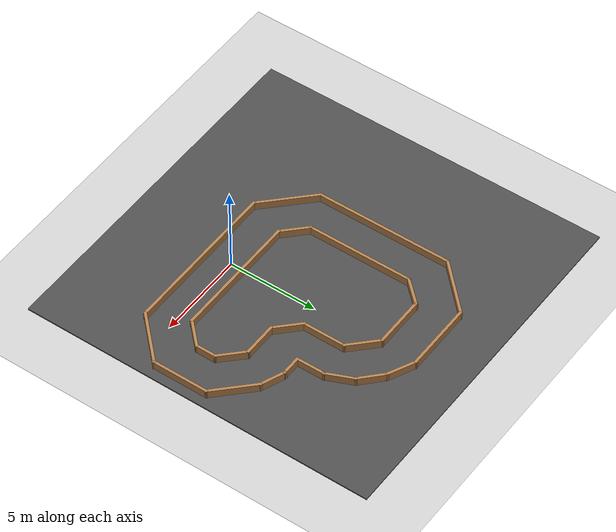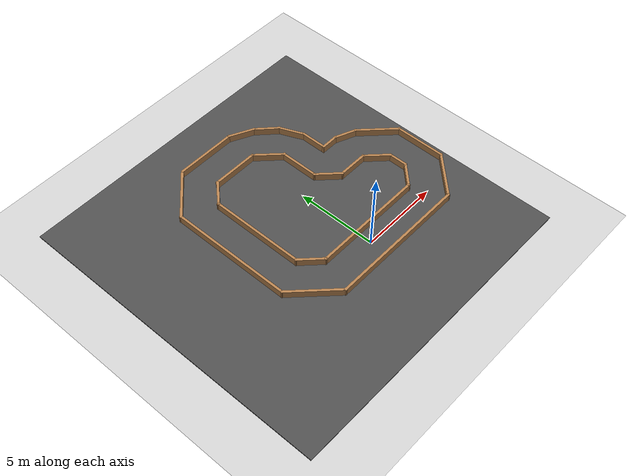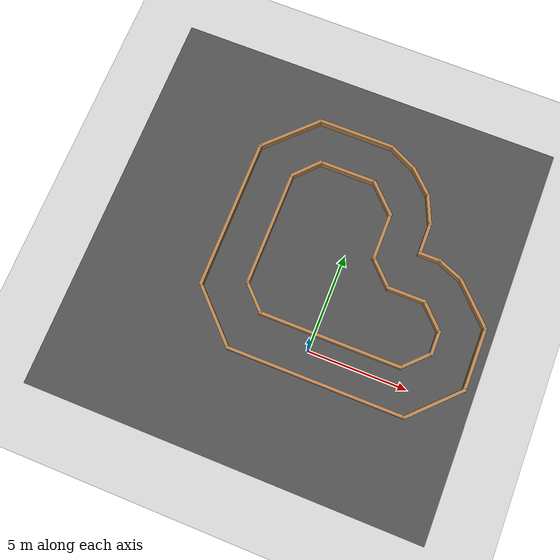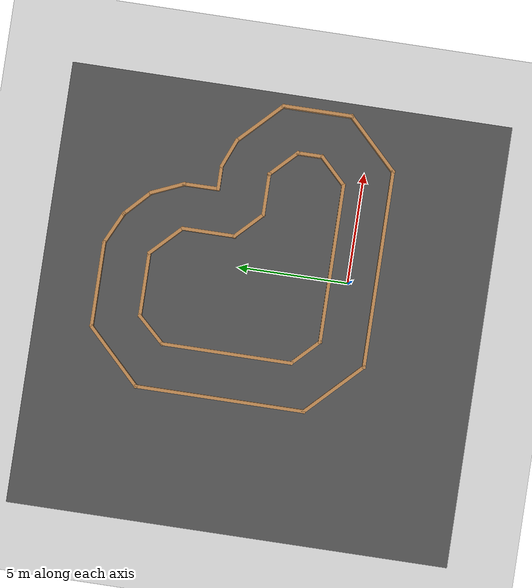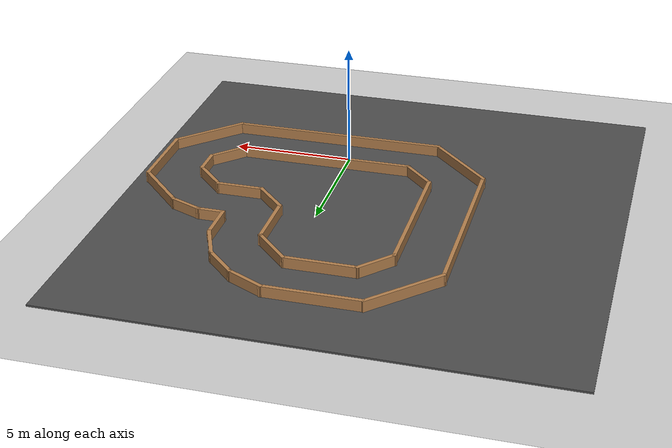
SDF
<sdf version="1.6">
 <world name="default">
  <light name="sun" type="directional">
   <pose>0 0 10 0 -0 0</pose>
   <diffuse>0.8 0.8 0.8 1</diffuse>
   <specular>0.1 0.1 0.1 1</specular>
   <attenuation>
    <range>1000</range>
    <constant>0.9</constant>
    <linear>0.01</linear>
    <quadratic>0.001</quadratic>
   </attenuation>
   <direction>-0.5 0.5 -1</direction>
  </light>
  <model name="ground_plane">
   <static>1</static>
   <link name="link">
    <collision name="collision">
     <geometry><plane><normal>0 0 1</normal><size>100 100</size></plane></geometry>
     <surface><friction><ode><mu>100</mu><mu2>50</mu2></ode></friction></surface>
    </collision>
    <visual name="visual">
     <cast_shadows>0</cast_shadows>
     <geometry><plane><normal>0 0 1</normal><size>100 100</size></plane></geometry>
     <material>
      <script><uri>file://media/materials/scripts/gazebo.material</uri><name>Gazebo/Grey</name></script>
     </material>
    </visual>
   </link>
  </model>
  <gravity>0 0 -9.8</gravity>
  <magnetic_field>6e-06 2.3e-05 -4.2e-05</magnetic_field>
  <atmosphere type="adiabatic"/>
  <physics name="default_physics" default="0" type="ode">
   <max_step_size>0.001</max_step_size>
   <real_time_factor>1</real_time_factor>
   <real_time_update_rate>1000</real_time_update_rate>
  </physics>
  <scene><ambient>0.4 0.4 0.4 1</ambient><background>0.7 0.7 0.7 1</background><shadows>1</shadows></scene>
  <spherical_coordinates>
   <surface_model>EARTH_WGS84</surface_model>
   <latitude_deg>0</latitude_deg>
   <longitude_deg>0</longitude_deg>
   <elevation>0</elevation>
   <heading_deg>0</heading_deg>
  </spherical_coordinates>
  <model name="asphalt_plane">
   <static>1</static>
   <link name="link">
    <collision name="collision"><geometry><box><size>20 20 0.1</size></box></geometry></collision>
    <visual name="visual">
     <cast_shadows>0</cast_shadows>
     <geometry><box><size>20 20 0.1</size></box></geometry>
     <material>
      <script>
       <uri>model://asphalt_plane/materials/scripts</uri>
       <uri>model://asphalt_plane/materials/textures</uri>
       <name>vrc/asphalt</name>
      </script>
     </material>
    </visual>
   </link>
   <pose>-1.94804 3.72296 0 0 -0 0</pose>
  </model>
  <model name="test-3">
   <pose>0.74969 4.92186 0 0 -0 0</pose>
   <link name="Wall_0">
    <collision name="Wall_0_Collision">
     <geometry><box><size>6 0.15 0.5</size></box></geometry>
     <pose>0 0 0.25 0 -0 0</pose>
    </collision>
    <visual name="Wall_0_Visual">
     <pose>0 0 0.25 0 -0 0</pose>
     <geometry><box><size>6 0.15 0.5</size></box></geometry>
     <material>
      <script><uri>file://media/materials/scripts/gazebo.material</uri><name>Gazebo/Wood</name></script>
      <ambient>1 1 1 1</ambient>
     </material>
    </visual>
    <pose>-4.64742 -0.004423 0 0 0 -1.5708</pose>
   </link>
   <link name="Wall_1">
    <collision name="Wall_1_Collision">
     <geometry><box><size>1.75 0.15 0.5</size></box></geometry>
     <pose>0 0 0.25 0 -0 0</pose>
    </collision>
    <visual name="Wall_1_Visual">
     <pose>0 0 0.25 0 -0 0</pose>
     <geometry><box><size>1.75 0.15 0.5</size></box></geometry>
     <material>
      <script><uri>file://media/materials/scripts/gazebo.material</uri><name>Gazebo/Wood</name></script>
      <ambient>1 1 1 1</ambient>
     </material>
    </visual>
    <pose>-4.08142 -3.49542 0 0 0 -0.785398</pose>
   </link>
   <link name="Wall_10">
    <collision name="Wall_10_Collision">
     <geometry><box><size>3 0.15 0.5</size></box></geometry>
     <pose>0 0 0.25 0 -0 0</pose>
    </collision>
    <visual name="Wall_10_Visual">
     <pose>0 0 0.25 0 -0 0</pose>
     <geometry><box><size>3 0.15 0.5</size></box></geometry>
     <material>
      <script><uri>file://media/materials/scripts/gazebo.material</uri><name>Gazebo/Wood</name></script>
      <ambient>1 1 1 1</ambient>
     </material>
    </visual>
    <pose>-2.13042 4.09158 0 0 -0 3.14159</pose>
   </link>
   <link name="Wall_11">
    <collision name="Wall_11_Collision">
     <geometry><box><size>1.75098 0.15 0.5</size></box></geometry>
     <pose>0 0 0.25 0 -0 0</pose>
    </collision>
    <visual name="Wall_11_Visual">
     <pose>0 0 0.25 0 -0 0</pose>
     <geometry><box><size>1.75098 0.15 0.5</size></box></geometry>
     <material>
      <script><uri>file://media/materials/scripts/gazebo.material</uri><name>Gazebo/Wood</name></script>
      <ambient>1 1 1 1</ambient>
     </material>
    </visual>
    <pose>-4.10142 3.50608 0 0 0 -2.3213</pose>
   </link>
   <link name="Wall_13">
    <collision name="Wall_13_Collision">
     <geometry><box><size>3.49886 0.15 0.5</size></box></geometry>
     <pose>0 0 0.25 0 -0 0</pose>
    </collision>
    <visual name="Wall_13_Visual">
     <pose>0 0 0.25 0 -0 0</pose>
     <geometry><box><size>3.49886 0.15 0.5</size></box></geometry>
     <material>
      <script><uri>file://media/materials/scripts/gazebo.material</uri><name>Gazebo/Wood</name></script>
      <ambient>1 1 1 1</ambient>
     </material>
    </visual>
    <pose>-5.52142 4.98458 0 0 0 -2.35619</pose>
   </link>
   <link name="Wall_14">
    <collision name="Wall_14_Collision">
     <geometry><box><size>7.75 0.15 0.5</size></box></geometry>
     <pose>0 0 0.25 0 -0 0</pose>
    </collision>
    <visual name="Wall_14_Visual">
     <pose>0 0 0.25 0 -0 0</pose>
     <geometry><box><size>7.75 0.15 0.5</size></box></geometry>
     <material>
      <script><uri>file://media/materials/scripts/gazebo.material</uri><name>Gazebo/Wood</name></script>
      <ambient>1 1 1 1</ambient>
     </material>
    </visual>
    <pose>-6.70542 0.000577 0 0 0 -1.5708</pose>
   </link>
   <link name="Wall_15">
    <collision name="Wall_15_Collision">
     <geometry><box><size>3.5 0.15 0.5</size></box></geometry>
     <pose>0 0 0.25 0 -0 0</pose>
    </collision>
    <visual name="Wall_15_Visual">
     <pose>0 0 0.25 0 -0 0</pose>
     <geometry><box><size>3.5 0.15 0.5</size></box></geometry>
     <material>
      <script><uri>file://media/materials/scripts/gazebo.material</uri><name>Gazebo/Wood</name></script>
      <ambient>1 1 1 1</ambient>
     </material>
    </visual>
    <pose>-5.52142 -4.98392 0 0 0 -0.785609</pose>
   </link>
   <link name="Wall_16">
    <collision name="Wall_16_Collision">
     <geometry><box><size>9 0.15 0.5</size></box></geometry>
     <pose>0 0 0.25 0 -0 0</pose>
    </collision>
    <visual name="Wall_16_Visual">
     <pose>0 0 0.25 0 -0 0</pose>
     <geometry><box><size>9 0.15 0.5</size></box></geometry>
     <material>
      <script><uri>file://media/materials/scripts/gazebo.material</uri><name>Gazebo/Wood</name></script>
      <ambient>1 1 1 1</ambient>
     </material>
    </visual>
    <pose>0.087583 -6.16842 0 0 -0 0</pose>
   </link>
   <link name="Wall_17">
    <collision name="Wall_17_Collision">
     <geometry><box><size>3.25 0.15 0.5</size></box></geometry>
     <pose>0 0 0.25 0 -0 0</pose>
    </collision>
    <visual name="Wall_17_Visual">
     <pose>0 0 0.25 0 -0 0</pose>
     <geometry><box><size>3.25 0.15 0.5</size></box></geometry>
     <material>
      <script><uri>file://media/materials/scripts/gazebo.material</uri><name>Gazebo/Wood</name></script>
      <ambient>1 1 1 1</ambient>
     </material>
    </visual>
    <pose>5.60908 -5.07242 0 0 -0 0.78517</pose>
   </link>
   <link name="Wall_18">
    <collision name="Wall_18_Collision">
     <geometry><box><size>3.25 0.15 0.5</size></box></geometry>
     <pose>0 0 0.25 0 -0 0</pose>
    </collision>
    <visual name="Wall_18_Visual">
     <pose>0 0 0.25 0 -0 0</pose>
     <geometry><box><size>3.25 0.15 0.5</size></box></geometry>
     <material>
      <script><uri>file://media/materials/scripts/gazebo.material</uri><name>Gazebo/Wood</name></script>
      <ambient>1 1 1 1</ambient>
     </material>
    </visual>
    <pose>6.70558 -2.42642 0 0 -0 1.5708</pose>
   </link>
   <link name="Wall_19">
    <collision name="Wall_19_Collision">
     <geometry><box><size>2.75 0.15 0.5</size></box></geometry>
     <pose>0 0 0.25 0 -0 0</pose>
    </collision>
    <visual name="Wall_19_Visual">
     <pose>0 0 0.25 0 -0 0</pose>
     <geometry><box><size>2.75 0.15 0.5</size></box></geometry>
     <material>
      <script><uri>file://media/materials/scripts/gazebo.material</uri><name>Gazebo/Wood</name></script>
      <ambient>1 1 1 1</ambient>
     </material>
    </visual>
    <pose>5.78608 0.042577 0 0 -0 2.35647</pose>
   </link>
   <link name="Wall_2">
    <collision name="Wall_2_Collision">
     <geometry><box><size>7.25 0.15 0.5</size></box></geometry>
     <pose>0 0 0.25 0 -0 0</pose>
    </collision>
    <visual name="Wall_2_Visual">
     <pose>0 0 0.25 0 -0 0</pose>
     <geometry><box><size>7.25 0.15 0.5</size></box></geometry>
     <material>
      <script><uri>file://media/materials/scripts/gazebo.material</uri><name>Gazebo/Wood</name></script>
      <ambient>1 1 1 1</ambient>
     </material>
    </visual>
    <pose>0.034583 -4.06142 0 0 -0 0</pose>
   </link>
   <link name="Wall_20">
    <collision name="Wall_20_Collision">
     <geometry><box><size>1.49228 0.15 0.5</size></box></geometry>
     <pose>0 0 0.25 0 -0 0</pose>
    </collision>
    <visual name="Wall_20_Visual">
     <pose>0 0 0.25 0 -0 0</pose>
     <geometry><box><size>1.49228 0.15 0.5</size></box></geometry>
     <material>
      <script><uri>file://media/materials/scripts/gazebo.material</uri><name>Gazebo/Wood</name></script>
      <ambient>1 1 1 1</ambient>
     </material>
    </visual>
    <pose>4.24508 1.21508 0 0 -0 2.75431</pose>
   </link>
   <link name="Wall_21">
    <collision name="Wall_21_Collision">
     <geometry><box><size>1.18189 0.15 0.5</size></box></geometry>
     <pose>0 0 0.25 0 -0 0</pose>
    </collision>
    <visual name="Wall_21_Visual">
     <pose>0 0 0.25 0 -0 0</pose>
     <geometry><box><size>1.18189 0.15 0.5</size></box></geometry>
     <material>
      <script><uri>file://media/materials/scripts/gazebo.material</uri><name>Gazebo/Wood</name></script>
      <ambient>1 1 1 1</ambient>
     </material>
    </visual>
    <pose>3.10808 1.46858 0 0 -0 3.14159</pose>
   </link>
   <link name="Wall_22">
    <collision name="Wall_22_Collision">
     <geometry><box><size>1.69243 0.15 0.5</size></box></geometry>
     <pose>0 0 0.25 0 -0 0</pose>
    </collision>
    <visual name="Wall_22_Visual">
     <pose>0 0 0.25 0 -0 0</pose>
     <geometry><box><size>1.69243 0.15 0.5</size></box></geometry>
     <material>
      <script><uri>file://media/materials/scripts/gazebo.material</uri><name>Gazebo/Wood</name></script>
      <ambient>1 1 1 1</ambient>
     </material>
    </visual>
    <pose>2.58808 2.24008 0 0 -0 1.57663</pose>
   </link>
   <link name="Wall_23">
    <collision name="Wall_23_Collision">
     <geometry><box><size>1.69023 0.15 0.5</size></box></geometry>
     <pose>0 0 0.25 0 -0 0</pose>
    </collision>
    <visual name="Wall_23_Visual">
     <pose>0 0 0.25 0 -0 0</pose>
     <geometry><box><size>1.69023 0.15 0.5</size></box></geometry>
     <material>
      <script><uri>file://media/materials/scripts/gazebo.material</uri><name>Gazebo/Wood</name></script>
      <ambient>1 1 1 1</ambient>
     </material>
    </visual>
    <pose>2.27858 3.71858 0 0 -0 1.97808</pose>
   </link>
   <link name="Wall_24">
    <collision name="Wall_24_Collision">
     <geometry><box><size>1.67911 0.15 0.5</size></box></geometry>
     <pose>0 0 0.25 0 -0 0</pose>
    </collision>
    <visual name="Wall_24_Visual">
     <pose>0 0 0.25 0 -0 0</pose>
     <geometry><box><size>1.67911 0.15 0.5</size></box></geometry>
     <material>
      <script><uri>file://media/materials/scripts/gazebo.material</uri><name>Gazebo/Wood</name></script>
      <ambient>1 1 1 1</ambient>
     </material>
    </visual>
    <pose>1.42158 4.95458 0 0 -0 2.37747</pose>
   </link>
   <link name="Wall_25">
    <collision name="Wall_25_Collision">
     <geometry><box><size>1.70828 0.15 0.5</size></box></geometry>
     <pose>0 0 0.25 0 -0 0</pose>
    </collision>
    <visual name="Wall_25_Visual">
     <pose>0 0 0.25 0 -0 0</pose>
     <geometry><box><size>1.70828 0.15 0.5</size></box></geometry>
     <material>
      <script><uri>file://media/materials/scripts/gazebo.material</uri><name>Gazebo/Wood</name></script>
      <ambient>1 1 1 1</ambient>
     </material>
    </visual>
    <pose>0.168583 5.82308 0 0 -0 2.69058</pose>
   </link>
   <link name="Wall_26">
    <collision name="Wall_26_Collision">
     <geometry><box><size>3.91123 0.15 0.5</size></box></geometry>
     <pose>0 0 0.25 0 -0 0</pose>
    </collision>
    <visual name="Wall_26_Visual">
     <pose>0 0 0.25 0 -0 0</pose>
     <geometry><box><size>3.91123 0.15 0.5</size></box></geometry>
     <material>
      <script><uri>file://media/materials/scripts/gazebo.material</uri><name>Gazebo/Wood</name></script>
      <ambient>1 1 1 1</ambient>
     </material>
    </visual>
    <pose>-2.41292 6.16258 0 0 -0 3.14159</pose>
   </link>
   <link name="Wall_3">
    <collision name="Wall_3_Collision">
     <geometry><box><size>1.75 0.15 0.5</size></box></geometry>
     <pose>0 0 0.25 0 -0 0</pose>
    </collision>
    <visual name="Wall_3_Visual">
     <pose>0 0 0.25 0 -0 0</pose>
     <geometry><box><size>1.75 0.15 0.5</size></box></geometry>
     <material>
      <script><uri>file://media/materials/scripts/gazebo.material</uri><name>Gazebo/Wood</name></script>
      <ambient>1 1 1 1</ambient>
     </material>
    </visual>
    <pose>4.15008 -3.49542 0 0 -0 0.78584</pose>
   </link>
   <link name="Wall_4">
    <collision name="Wall_4_Collision">
     <geometry><box><size>1.25 0.15 0.5</size></box></geometry>
     <pose>0 0 0.25 0 -0 0</pose>
    </collision>
    <visual name="Wall_4_Visual">
     <pose>0 0 0.25 0 -0 0</pose>
     <geometry><box><size>1.25 0.15 0.5</size></box></geometry>
     <material>
      <script><uri>file://media/materials/scripts/gazebo.material</uri><name>Gazebo/Wood</name></script>
      <ambient>1 1 1 1</ambient>
     </material>
    </visual>
    <pose>4.71558 -2.37942 0 0 -0 1.5708</pose>
   </link>
   <link name="Wall_5">
    <collision name="Wall_5_Collision">
     <geometry><box><size>1.75 0.15 0.5</size></box></geometry>
     <pose>0 0 0.25 0 -0 0</pose>
    </collision>
    <visual name="Wall_5_Visual">
     <pose>0 0 0.25 0 -0 0</pose>
     <geometry><box><size>1.75 0.15 0.5</size></box></geometry>
     <material>
      <script><uri>file://media/materials/scripts/gazebo.material</uri><name>Gazebo/Wood</name></script>
      <ambient>1 1 1 1</ambient>
     </material>
    </visual>
    <pose>4.15008 -1.26392 0 0 -0 2.35619</pose>
   </link>
   <link name="Wall_6">
    <collision name="Wall_6_Collision">
     <geometry><box><size>2 0.15 0.5</size></box></geometry>
     <pose>0 0 0.25 0 -0 0</pose>
    </collision>
    <visual name="Wall_6_Visual">
     <pose>0 0 0.25 0 -0 0</pose>
     <geometry><box><size>2 0.15 0.5</size></box></geometry>
     <material>
      <script><uri>file://media/materials/scripts/gazebo.material</uri><name>Gazebo/Wood</name></script>
      <ambient>1 1 1 1</ambient>
     </material>
    </visual>
    <pose>2.65958 -0.698423 0 0 -0 3.14159</pose>
   </link>
   <link name="Wall_7">
    <collision name="Wall_7_Collision">
     <geometry><box><size>1.75 0.15 0.5</size></box></geometry>
     <pose>0 0 0.25 0 -0 0</pose>
    </collision>
    <visual name="Wall_7_Visual">
     <pose>0 0 0.25 0 -0 0</pose>
     <geometry><box><size>1.75 0.15 0.5</size></box></geometry>
     <material>
      <script><uri>file://media/materials/scripts/gazebo.material</uri><name>Gazebo/Wood</name></script>
      <ambient>1 1 1 1</ambient>
     </material>
    </visual>
    <pose>1.16858 -0.132923 0 0 -0 2.35664</pose>
   </link>
   <link name="Wall_8">
    <collision name="Wall_8_Collision">
     <geometry><box><size>2.5 0.15 0.5</size></box></geometry>
     <pose>0 0 0.25 0 -0 0</pose>
    </collision>
    <visual name="Wall_8_Visual">
     <pose>0 0 0.25 0 -0 0</pose>
     <geometry><box><size>2.5 0.15 0.5</size></box></geometry>
     <material>
      <script><uri>file://media/materials/scripts/gazebo.material</uri><name>Gazebo/Wood</name></script>
      <ambient>1 1 1 1</ambient>
     </material>
    </visual>
    <pose>0.602583 1.60758 0 0 -0 1.5708</pose>
   </link>
   <link name="Wall_9">
    <collision name="Wall_9_Collision">
     <geometry><box><size>2 0.15 0.5</size></box></geometry>
     <pose>0 0 0.25 0 -0 0</pose>
    </collision>
    <visual name="Wall_9_Visual">
     <pose>0 0 0.25 0 -0 0</pose>
     <geometry><box><size>2 0.15 0.5</size></box></geometry>
     <material>
      <script><uri>file://media/materials/scripts/gazebo.material</uri><name>Gazebo/Wood</name></script>
      <ambient>1 1 1 1</ambient>
     </material>
    </visual>
    <pose>-0.051417 3.43708 0 0 -0 2.35581</pose>
   </link>
   <static>1</static>
  </model>
 </world>
</sdf>
